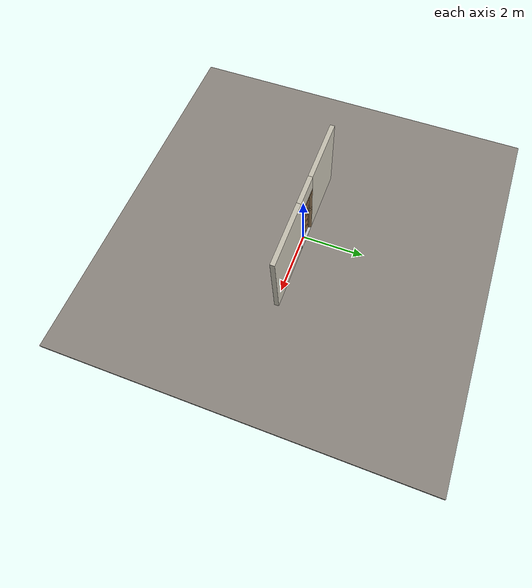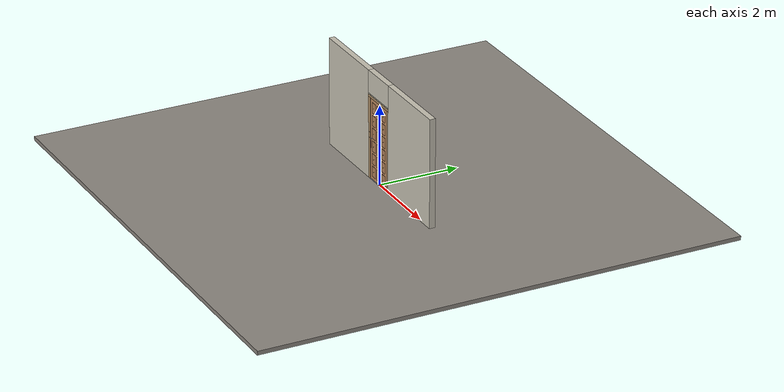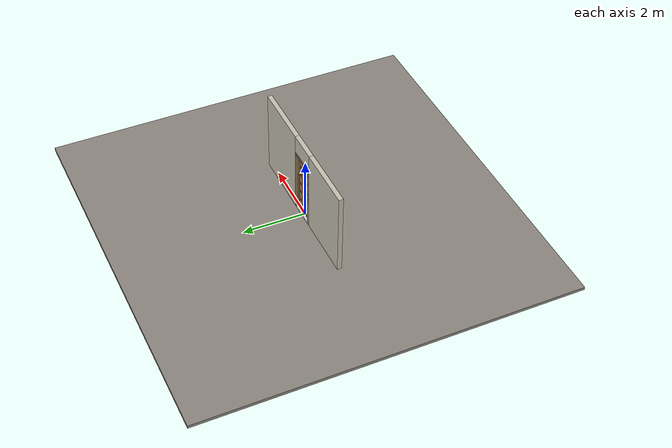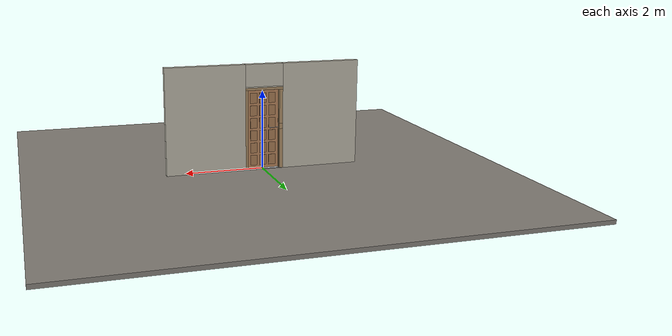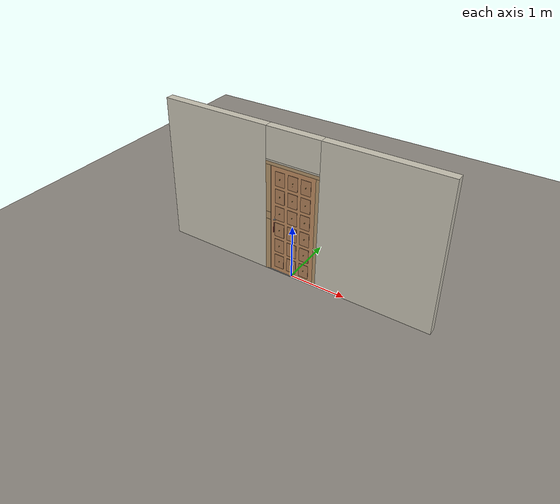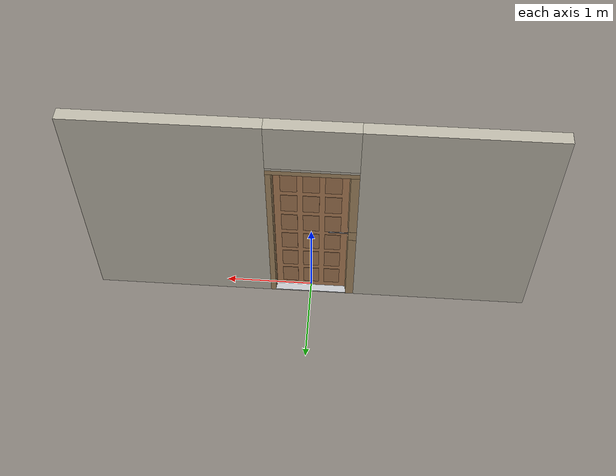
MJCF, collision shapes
<?xml version="1.0" ?>
<mujoco model="db0576_swing_single_full">
  <compiler angle="radian" meshdir="../../hardware" texturedir="../../textures" autolimits="true" inertiafromgeom="false"/>
  <option timestep="0.002" integrator="implicitfast" cone="elliptic" impratio="10" noslip_iterations="3">
    <flag multiccd="enable"/>
  </option>
  <size memory="16M"/>
  <default>
    <geom condim="4" solref="0.005 1" solimp="0.95 0.99 0.001"/>
    <joint solreflimit="0.005 1" solimplimit="0.95 0.99 0.001"/>
    <tendon solreflimit="0.005 1"/>
    <equality solref="0.002 1"/>
  </default>
  <visual>
    <headlight ambient="0.4 0.4 0.4" diffuse="0.7 0.7 0.7" specular="0.2 0.2 0.2"/>
    <quality shadowsize="4096"/>
    <map znear="0.01" zfar="60"/>
  </visual>
  <asset>
    <mesh name="hinge_7a316c6d01" file="hinge_7a316c6d01.obj"/>
    <mesh name="hinge_jamb_575a241b6b" file="hinge_jamb_575a241b6b.obj"/>
    <mesh name="thumb_latch_0073ea78ed" file="thumb_latch_0073ea78ed.obj"/>
    <mesh name="wreath_86a3f1bf8b" file="wreath_86a3f1bf8b.obj"/>
    <material name="mat_floor" rgba="0.55 0.53 0.5 1" specular="0.2" shininess="0.15" reflectance="0"/>
    <material name="mat_wall" rgba="0.78 0.76 0.7 1" specular="0.2" shininess="0.1" reflectance="0"/>
    <material name="mat_leaf" rgba="0.75 0.55 0.38 1" specular="0.2" shininess="0.45" reflectance="0"/>
    <material name="mat_leaf_panel" rgba="0.69 0.506 0.35 1" specular="0.2" shininess="0.45" reflectance="0"/>
    <material name="mat_button" rgba="0.7 0.6 0.3 1" specular="0.8" shininess="0.7" reflectance="0.4"/>
    <material name="mat_hinge" rgba="0.65 0.66 0.68 1" specular="0.74" shininess="0.5" reflectance="0.36"/>
    <material name="mat_op_wrought_iron" rgba="0.08 0.08 0.09 1" specular="0.56" shininess="0.25" reflectance="0.24"/>
    <material name="mat_frame" rgba="0.7 0.58 0.42 1" specular="0.2" shininess="0.5" reflectance="0"/>
    <material name="mat_threshold" rgba="0.8 0.81 0.83 1" specular="0.8" shininess="0.6" reflectance="0.4"/>
    <material name="mat_wreath" rgba="0.12 0.3 0.12 1" specular="0.2" shininess="0.05" reflectance="0"/>
    <material name="mat_wreath_hook" rgba="0.85 0.66 0.3 1" specular="0.8" shininess="0.75" reflectance="0.4"/>
    <texture name="skybox" type="skybox" builtin="gradient" rgb1="0.6 0.7 0.85" rgb2="0.9 0.92 0.95" width="256" height="256"/>
  </asset>
  <worldbody>
    <light name="sun" pos="1.5 -2.5 4" dir="-0.3 0.5 -0.8" directional="true" diffuse="0.8 0.8 0.8" specular="0.3 0.3 0.3" castshadow="true"/>
    <light name="fill" pos="-1.5 2.5 3" dir="0.3 -0.5 -0.7" directional="true" diffuse="0.35 0.35 0.4" castshadow="false"/>
    <camera name="robot_view" pos="0 -2.501687 1.734312" xyaxes="1 0 0 0 0.26963 0.962964" fovy="52"/>
    <camera name="far_view" pos="0 2.582688 1.734312" xyaxes="-1 0 0 0 -0.26963 0.962964" fovy="52"/>
    <camera name="iso" pos="-1.932062 -2.094937 2.141063" xyaxes="0.741536 -0.670913 0 0.242917 0.268487 0.932151" fovy="46"/>
    <camera name="detail_handle" pos="-0.1455 -0.86 1.195" xyaxes="0.97561 0.219512 0 -0.070934 0.315262 0.94635" fovy="38"/>
    <geom name="floor" type="box" size="6 6 0.05" pos="0 0 -0.05" material="mat_floor" group="0" contype="1" conaffinity="1" friction="0.8 0.005 0.0001" density="2400"/>
    <geom name="wall_left" type="box" size="0.99975 0.0725 1.35" pos="-1.50025 0.0405 1.35" material="mat_wall" group="0" contype="1" conaffinity="1" friction="0.6 0.005 0.0001" density="800"/>
    <geom name="wall_right" type="box" size="1.01475 0.0725 1.35" pos="1.48525 0.0405 1.35" material="mat_wall" group="0" contype="1" conaffinity="1" friction="0.6 0.005 0.0001" density="800"/>
    <geom name="wall_header" type="box" size="0.4855 0.0725 0.2825" pos="-0.015 0.0405 2.4175" material="mat_wall" group="0" contype="1" conaffinity="1" friction="0.6 0.005 0.0001" density="800"/>
    <geom name="hinge_0_jamb" type="mesh" mesh="hinge_jamb_575a241b6b" pos="0.4075 -0.032 0.267" quat="0 0 1 0" material="mat_hinge" group="1" contype="0" conaffinity="0" density="7850"/>
    <geom name="hinge_1_jamb" type="mesh" mesh="hinge_jamb_575a241b6b" pos="0.4075 -0.032 1.029" quat="0 0 1 0" material="mat_hinge" group="1" contype="0" conaffinity="0" density="7850"/>
    <geom name="hinge_2_jamb" type="mesh" mesh="hinge_jamb_575a241b6b" pos="0.4075 -0.032 1.861" quat="0 0 1 0" material="mat_hinge" group="1" contype="0" conaffinity="0" density="7850"/>
    <geom name="leaf_latch_bar_keeper_b" type="box" size="0.015 0.0025 0.0005" pos="-0.41 0.037 1.0275" quat="0.5 0.5 0.5 0.5" material="mat_op_wrought_iron" group="1" contype="0" conaffinity="0" density="7800"/>
    <geom name="leaf_latch_bar_keeper_l" type="box" size="0.0025 0.07 0.0005" pos="-0.41 0.0245 1.1" quat="0.5 0.5 0.5 0.5" material="mat_op_wrought_iron" group="1" contype="0" conaffinity="0" density="7800"/>
    <geom name="leaf_latch_bar_keeper_t" type="box" size="0.015 0.0025 0.0005" pos="-0.41 0.037 1.1725" quat="0.5 0.5 0.5 0.5" material="mat_op_wrought_iron" group="1" contype="0" conaffinity="0" density="7800"/>
    <geom name="leaf_latch_bar_keeper_r" type="box" size="0.0025 0.07 0.0005" pos="-0.41 0.0495 1.1" quat="0.5 0.5 0.5 0.5" material="mat_op_wrought_iron" group="1" contype="0" conaffinity="0" density="7800"/>
    <geom name="jamb_hinge" type="box" size="0.03 0.0725 1.0225" pos="0.4405 0.0405 1.0225" material="mat_frame" group="0" contype="1" conaffinity="1" friction="0.6 0.005 0.0001" density="750"/>
    <geom name="strike_1100_wall_n" type="box" size="0.045 0.033 0.07" pos="-0.4555 0.08 1.1" material="mat_frame" group="0" contype="1" conaffinity="1" friction="0.6 0.005 0.0001" density="750"/>
    <geom name="strike_1100_wall_p" type="box" size="0.045 0.0295 0.07" pos="-0.4555 -0.0025 1.1" material="mat_frame" group="0" contype="1" conaffinity="1" friction="0.6 0.005 0.0001" density="750"/>
    <geom name="strike_1100_back" type="box" size="0.035 0.01 0.07" pos="-0.4655 0.037 1.1" material="mat_frame" group="0" contype="1" conaffinity="1" friction="0.6 0.005 0.0001" density="750"/>
    <geom name="jamb_strike_0" type="box" size="0.045 0.0725 0.515" pos="-0.4555 0.0405 0.515" material="mat_frame" group="0" contype="1" conaffinity="1" friction="0.6 0.005 0.0001" density="750"/>
    <geom name="jamb_strike_1" type="box" size="0.045 0.0725 0.4375" pos="-0.4555 0.0405 1.6075" material="mat_frame" group="0" contype="1" conaffinity="1" friction="0.6 0.005 0.0001" density="750"/>
    <geom name="jamb_head" type="box" size="0.4855 0.0725 0.03" pos="-0.015 0.0405 2.075" material="mat_frame" group="0" contype="1" conaffinity="1" friction="0.6 0.005 0.0001" density="750"/>
    <geom name="head_stud" type="box" size="0.4855 0.0725 0.015" pos="-0.015 0.0405 2.12" material="mat_wall" group="0" contype="1" conaffinity="1" friction="0.6 0.005 0.0001" density="500"/>
    <geom name="stop_hinge" type="box" size="0.0055 0.016 1.0225" pos="0.405 0.0415 1.0225" material="mat_frame" group="0" contype="1" conaffinity="1" friction="0.6 0.005 0.0001" density="750"/>
    <geom name="stop_strike" type="box" size="0.0055 0.016 0.509" pos="-0.405 0.0415 0.509" material="mat_frame" group="0" contype="1" conaffinity="1" friction="0.6 0.005 0.0001" density="750"/>
    <geom name="stop_strike_1" type="box" size="0.0055 0.016 0.4315" pos="-0.405 0.0415 1.6135" material="mat_frame" group="0" contype="1" conaffinity="1" friction="0.6 0.005 0.0001" density="750"/>
    <geom name="stop_head" type="box" size="0.4105 0.016 0.0055" pos="0 0.0415 2.0395" material="mat_frame" group="0" contype="1" conaffinity="1" friction="0.6 0.005 0.0001" density="750"/>
    <geom name="threshold" type="box" size="0.4705 0.0725 0.0065" pos="0 0.0405 0.0065" material="mat_threshold" group="0" contype="1" conaffinity="1" friction="0.5 0.005 0.0001" density="2700"/>
    <site name="approach_point" pos="0 -1.5 0" quat="1 0 0 0" size="0.05" rgba="0.2 0.9 0.2 0.5" group="4"/>
    <site name="goal_point" pos="0 1.5 0" quat="1 0 0 0" size="0.05" rgba="0.2 0.9 0.2 0.5" group="4"/>
    <site name="door_plane_center" pos="0 0 1.0225" quat="1 0 0 0" size="0.02" rgba="0.2 0.9 0.2 0.5" group="4"/>
    <body name="leaf" pos="0.4105 0 0">
      <inertial pos="-0.411305 -0.003827 1.045875" mass="43.665256" quat="0.502387 -0.49899 -0.499153 -0.499462" diaginertia="2.452382847 14.665099615 17.079654737"/>
      <joint name="leaf_hinge" type="hinge" axis="0 0 1" pos="-0.003 -0.032 0" limited="true" range="0 2.443461" damping="0.210326" frictionloss="3.794658" armature="0.02"/>
      <geom name="leaf_slab" type="box" size="0.4065 0.025 1.012" pos="-0.4095 0 1.029" material="mat_leaf" group="0" contype="1" conaffinity="1" friction="0.35 0.005 0.0001" density="1"/>
      <geom name="leaf_panel_0_n" type="box" size="0.088833 0.003 0.130333" pos="-0.171833 -0.028 0.227333" material="mat_leaf_panel" group="1" contype="0" conaffinity="0" density="1"/>
      <geom name="leaf_panel_0_p" type="box" size="0.088833 0.003 0.130333" pos="-0.171833 0.028 0.227333" material="mat_leaf_panel" group="1" contype="0" conaffinity="0" density="1"/>
      <geom name="leaf_panel_1_n" type="box" size="0.088833 0.003 0.130333" pos="-0.4095 -0.028 0.227333" material="mat_leaf_panel" group="1" contype="0" conaffinity="0" density="1"/>
      <geom name="leaf_panel_1_p" type="box" size="0.088833 0.003 0.130333" pos="-0.4095 0.028 0.227333" material="mat_leaf_panel" group="1" contype="0" conaffinity="0" density="1"/>
      <geom name="leaf_panel_2_n" type="box" size="0.088833 0.003 0.130333" pos="-0.647167 -0.028 0.227333" material="mat_leaf_panel" group="1" contype="0" conaffinity="0" density="1"/>
      <geom name="leaf_panel_2_p" type="box" size="0.088833 0.003 0.130333" pos="-0.647167 0.028 0.227333" material="mat_leaf_panel" group="1" contype="0" conaffinity="0" density="1"/>
      <geom name="leaf_panel_3_n" type="box" size="0.088833 0.003 0.130333" pos="-0.171833 -0.028 0.548" material="mat_leaf_panel" group="1" contype="0" conaffinity="0" density="1"/>
      <geom name="leaf_panel_3_p" type="box" size="0.088833 0.003 0.130333" pos="-0.171833 0.028 0.548" material="mat_leaf_panel" group="1" contype="0" conaffinity="0" density="1"/>
      <geom name="leaf_panel_4_n" type="box" size="0.088833 0.003 0.130333" pos="-0.4095 -0.028 0.548" material="mat_leaf_panel" group="1" contype="0" conaffinity="0" density="1"/>
      <geom name="leaf_panel_4_p" type="box" size="0.088833 0.003 0.130333" pos="-0.4095 0.028 0.548" material="mat_leaf_panel" group="1" contype="0" conaffinity="0" density="1"/>
      <geom name="leaf_panel_5_n" type="box" size="0.088833 0.003 0.130333" pos="-0.647167 -0.028 0.548" material="mat_leaf_panel" group="1" contype="0" conaffinity="0" density="1"/>
      <geom name="leaf_panel_5_p" type="box" size="0.088833 0.003 0.130333" pos="-0.647167 0.028 0.548" material="mat_leaf_panel" group="1" contype="0" conaffinity="0" density="1"/>
      <geom name="leaf_panel_6_n" type="box" size="0.088833 0.003 0.130333" pos="-0.171833 -0.028 0.868667" material="mat_leaf_panel" group="1" contype="0" conaffinity="0" density="1"/>
      <geom name="leaf_panel_6_p" type="box" size="0.088833 0.003 0.130333" pos="-0.171833 0.028 0.868667" material="mat_leaf_panel" group="1" contype="0" conaffinity="0" density="1"/>
      <geom name="leaf_panel_7_n" type="box" size="0.088833 0.003 0.130333" pos="-0.4095 -0.028 0.868667" material="mat_leaf_panel" group="1" contype="0" conaffinity="0" density="1"/>
      <geom name="leaf_panel_7_p" type="box" size="0.088833 0.003 0.130333" pos="-0.4095 0.028 0.868667" material="mat_leaf_panel" group="1" contype="0" conaffinity="0" density="1"/>
      <geom name="leaf_panel_8_n" type="box" size="0.088833 0.003 0.130333" pos="-0.647167 -0.028 0.868667" material="mat_leaf_panel" group="1" contype="0" conaffinity="0" density="1"/>
      <geom name="leaf_panel_8_p" type="box" size="0.088833 0.003 0.130333" pos="-0.647167 0.028 0.868667" material="mat_leaf_panel" group="1" contype="0" conaffinity="0" density="1"/>
      <geom name="leaf_panel_9_n" type="box" size="0.088833 0.003 0.130333" pos="-0.171833 -0.028 1.189333" material="mat_leaf_panel" group="1" contype="0" conaffinity="0" density="1"/>
      <geom name="leaf_panel_9_p" type="box" size="0.088833 0.003 0.130333" pos="-0.171833 0.028 1.189333" material="mat_leaf_panel" group="1" contype="0" conaffinity="0" density="1"/>
      <geom name="leaf_panel_10_n" type="box" size="0.088833 0.003 0.130333" pos="-0.4095 -0.028 1.189333" material="mat_leaf_panel" group="1" contype="0" conaffinity="0" density="1"/>
      <geom name="leaf_panel_10_p" type="box" size="0.088833 0.003 0.130333" pos="-0.4095 0.028 1.189333" material="mat_leaf_panel" group="1" contype="0" conaffinity="0" density="1"/>
      <geom name="leaf_panel_11_n" type="box" size="0.088833 0.003 0.130333" pos="-0.647167 -0.028 1.189333" material="mat_leaf_panel" group="1" contype="0" conaffinity="0" density="1"/>
      <geom name="leaf_panel_11_p" type="box" size="0.088833 0.003 0.130333" pos="-0.647167 0.028 1.189333" material="mat_leaf_panel" group="1" contype="0" conaffinity="0" density="1"/>
      <geom name="leaf_panel_12_n" type="box" size="0.088833 0.003 0.130333" pos="-0.171833 -0.028 1.51" material="mat_leaf_panel" group="1" contype="0" conaffinity="0" density="1"/>
      <geom name="leaf_panel_12_p" type="box" size="0.088833 0.003 0.130333" pos="-0.171833 0.028 1.51" material="mat_leaf_panel" group="1" contype="0" conaffinity="0" density="1"/>
      <geom name="leaf_panel_13_n" type="box" size="0.088833 0.003 0.130333" pos="-0.4095 -0.028 1.51" material="mat_leaf_panel" group="1" contype="0" conaffinity="0" density="1"/>
      <geom name="leaf_panel_13_p" type="box" size="0.088833 0.003 0.130333" pos="-0.4095 0.028 1.51" material="mat_leaf_panel" group="1" contype="0" conaffinity="0" density="1"/>
      <geom name="leaf_panel_14_n" type="box" size="0.088833 0.003 0.130333" pos="-0.647167 -0.028 1.51" material="mat_leaf_panel" group="1" contype="0" conaffinity="0" density="1"/>
      <geom name="leaf_panel_14_p" type="box" size="0.088833 0.003 0.130333" pos="-0.647167 0.028 1.51" material="mat_leaf_panel" group="1" contype="0" conaffinity="0" density="1"/>
      <geom name="leaf_panel_15_n" type="box" size="0.088833 0.003 0.130333" pos="-0.171833 -0.028 1.830667" material="mat_leaf_panel" group="1" contype="0" conaffinity="0" density="1"/>
      <geom name="leaf_panel_15_p" type="box" size="0.088833 0.003 0.130333" pos="-0.171833 0.028 1.830667" material="mat_leaf_panel" group="1" contype="0" conaffinity="0" density="1"/>
      <geom name="leaf_panel_16_n" type="box" size="0.088833 0.003 0.130333" pos="-0.4095 -0.028 1.830667" material="mat_leaf_panel" group="1" contype="0" conaffinity="0" density="1"/>
      <geom name="leaf_panel_16_p" type="box" size="0.088833 0.003 0.130333" pos="-0.4095 0.028 1.830667" material="mat_leaf_panel" group="1" contype="0" conaffinity="0" density="1"/>
      <geom name="leaf_panel_17_n" type="box" size="0.088833 0.003 0.130333" pos="-0.647167 -0.028 1.830667" material="mat_leaf_panel" group="1" contype="0" conaffinity="0" density="1"/>
      <geom name="leaf_panel_17_p" type="box" size="0.088833 0.003 0.130333" pos="-0.647167 0.028 1.830667" material="mat_leaf_panel" group="1" contype="0" conaffinity="0" density="1"/>
      <geom name="leaf_tuft_0" type="sphere" size="0.01" pos="-0.171833 -0.033 0.227333" material="mat_button" group="2" contype="0" conaffinity="0" density="7850"/>
      <geom name="leaf_tuft_1" type="sphere" size="0.01" pos="-0.4095 -0.033 0.227333" material="mat_button" group="2" contype="0" conaffinity="0" density="7850"/>
      <geom name="leaf_tuft_2" type="sphere" size="0.01" pos="-0.647167 -0.033 0.227333" material="mat_button" group="2" contype="0" conaffinity="0" density="7850"/>
      <geom name="leaf_tuft_3" type="sphere" size="0.01" pos="-0.171833 -0.033 0.548" material="mat_button" group="2" contype="0" conaffinity="0" density="7850"/>
      <geom name="leaf_tuft_4" type="sphere" size="0.01" pos="-0.4095 -0.033 0.548" material="mat_button" group="2" contype="0" conaffinity="0" density="7850"/>
      <geom name="leaf_tuft_5" type="sphere" size="0.01" pos="-0.647167 -0.033 0.548" material="mat_button" group="2" contype="0" conaffinity="0" density="7850"/>
      <geom name="leaf_tuft_6" type="sphere" size="0.01" pos="-0.171833 -0.033 0.868667" material="mat_button" group="2" contype="0" conaffinity="0" density="7850"/>
      <geom name="leaf_tuft_7" type="sphere" size="0.01" pos="-0.4095 -0.033 0.868667" material="mat_button" group="2" contype="0" conaffinity="0" density="7850"/>
      <geom name="leaf_tuft_8" type="sphere" size="0.01" pos="-0.647167 -0.033 0.868667" material="mat_button" group="2" contype="0" conaffinity="0" density="7850"/>
      <geom name="leaf_tuft_9" type="sphere" size="0.01" pos="-0.171833 -0.033 1.189333" material="mat_button" group="2" contype="0" conaffinity="0" density="7850"/>
      <geom name="leaf_tuft_10" type="sphere" size="0.01" pos="-0.4095 -0.033 1.189333" material="mat_button" group="2" contype="0" conaffinity="0" density="7850"/>
      <geom name="leaf_tuft_11" type="sphere" size="0.01" pos="-0.647167 -0.033 1.189333" material="mat_button" group="2" contype="0" conaffinity="0" density="7850"/>
      <geom name="leaf_tuft_12" type="sphere" size="0.01" pos="-0.171833 -0.033 1.51" material="mat_button" group="2" contype="0" conaffinity="0" density="7850"/>
      <geom name="leaf_tuft_13" type="sphere" size="0.01" pos="-0.4095 -0.033 1.51" material="mat_button" group="2" contype="0" conaffinity="0" density="7850"/>
      <geom name="leaf_tuft_14" type="sphere" size="0.01" pos="-0.647167 -0.033 1.51" material="mat_button" group="2" contype="0" conaffinity="0" density="7850"/>
      <geom name="leaf_tuft_15" type="sphere" size="0.01" pos="-0.171833 -0.033 1.830667" material="mat_button" group="2" contype="0" conaffinity="0" density="7850"/>
      <geom name="leaf_tuft_16" type="sphere" size="0.01" pos="-0.4095 -0.033 1.830667" material="mat_button" group="2" contype="0" conaffinity="0" density="7850"/>
      <geom name="leaf_tuft_17" type="sphere" size="0.01" pos="-0.647167 -0.033 1.830667" material="mat_button" group="2" contype="0" conaffinity="0" density="7850"/>
      <geom name="hinge_0" type="mesh" mesh="hinge_7a316c6d01" pos="-0.003 -0.032 0.267" quat="0 0 1 0" material="mat_hinge" group="1" contype="0" conaffinity="0" density="7850"/>
      <geom name="hinge_1" type="mesh" mesh="hinge_7a316c6d01" pos="-0.003 -0.032 1.029" quat="0 0 1 0" material="mat_hinge" group="1" contype="0" conaffinity="0" density="7850"/>
      <geom name="hinge_2" type="mesh" mesh="hinge_7a316c6d01" pos="-0.003 -0.032 1.861" quat="0 0 1 0" material="mat_hinge" group="1" contype="0" conaffinity="0" density="7850"/>
      <geom name="leaf_suffolk_grip" type="mesh" mesh="thumb_latch_0073ea78ed" pos="-0.736 -0.025 0.915" quat="0 0 -0.707107 0.707107" material="mat_op_wrought_iron" group="1" contype="0" conaffinity="0" density="7000"/>
      <geom name="leaf_suffolk_grip_col" type="capsule" size="0.008 0.09" pos="-0.736 -0.06 0.915" material="mat_op_wrought_iron" group="3" contype="1" conaffinity="1" rgba="0.8 0.3 0.3 0.25" friction="0.7 0.01 0.0001" density="7000"/>
      <geom name="leaf_latch_bar_pivot" type="box" size="0.018 0.002 0.018" pos="-0.616 0.027 1.055" material="mat_op_wrought_iron" group="1" contype="0" conaffinity="0" density="7000"/>
      <geom name="leaf_latch_bar_pin" type="cylinder" size="0.005 0.01" pos="-0.616 0.035 1.055" quat="0.707107 -0.707107 0 0" material="mat_op_wrought_iron" group="1" contype="0" conaffinity="0" density="7000"/>
      <geom name="wreath" type="mesh" mesh="wreath_86a3f1bf8b" pos="-0.4095 -0.025 1.59572" quat="0 0 -0.707107 0.707107" material="mat_wreath" group="2" contype="0" conaffinity="0" density="200"/>
      <geom name="wreath_hook" type="cylinder" size="0.004 0.008" pos="-0.4095 -0.032 1.78372" quat="0.707107 -0.707107 0 0" material="mat_wreath_hook" group="2" contype="0" conaffinity="0" density="8500"/>
      <site name="leaf_grip_n" pos="-0.736 -0.06 0.915" quat="1 0 0 0" size="0.012" rgba="0.2 0.9 0.2 0.5" group="4"/>
      <site name="leaf_edge_mid" pos="-0.816 0 1.012" quat="1 0 0 0" size="0.02" rgba="0.2 0.9 0.2 0.5" group="4"/>
      <body name="leaf_thumb" pos="-0.736 -0.025 1.06">
        <inertial pos="0 -0.00137 -0.006032" mass="0.131152" quat="0.700107 -0.09925 -0.09925 -0.700107" diaginertia="0.000010933 0.0000597 0.000061045"/>
        <joint name="leaf_thumb_hinge" type="hinge" axis="1 0 0" limited="true" range="0 0.3" damping="0.15542" frictionloss="0.032" stiffness="0.6" springref="-0.5" armature="0.01"/>
        <geom name="leaf_thumb_geom" type="box" size="0.015 0.014 0.003" pos="0 -0.02 0" material="mat_op_wrought_iron" group="0" contype="1" conaffinity="1" friction="0.6 0.005 0.0001" density="7000"/>
        <geom name="leaf_thumb_boss" type="box" size="0.012 0.008 0.013" pos="0 -0.004 -0.005" material="mat_op_wrought_iron" group="1" contype="0" conaffinity="0" density="7000"/>
        <geom name="leaf_thumb_lifter" type="box" size="0.004 0.029 0.004" pos="0 0.031 -0.017" material="mat_op_wrought_iron" group="1" contype="0" conaffinity="0" density="7000"/>
        <site name="leaf_thumb_push" pos="0 -0.024 0.005" quat="1 0 0 0" size="0.01" rgba="0.2 0.9 0.2 0.5" group="4"/>
      </body>
      <body name="leaf_latch_bar" pos="-0.616 0.037 1.055">
        <inertial pos="-0.106 0 0" mass="0.25" quat="0 0 -0.707107 0.707107" diaginertia="0.000004465 0.000904065 0.000904065"/>
        <joint name="leaf_latch_bar_hinge" type="hinge" axis="0 1 0" limited="true" range="0 0.6" damping="0.01" frictionloss="0.01" armature="0.005"/>
        <geom name="leaf_latch_bar_geom" type="capsule" size="0.006 0.1" pos="-0.106 0 0" quat="0.707107 0 -0.707107 0" material="mat_op_wrought_iron" group="0" contype="1" conaffinity="1" friction="0.6 0.005 0.0001" density="7850"/>
      </body>
    </body>
  </worldbody>
  <equality>
    <joint name="leaf_thumb_couple" joint1="leaf_latch_bar_hinge" joint2="leaf_thumb_hinge" polycoef="0 2 0 0 0" active="true"/>
  </equality>
  <sensor>
    <jointpos name="leaf_hinge_pos" joint="leaf_hinge"/>
    <jointvel name="leaf_hinge_vel" joint="leaf_hinge"/>
    <jointpos name="leaf_thumb_hinge_pos" joint="leaf_thumb_hinge"/>
    <jointvel name="leaf_thumb_hinge_vel" joint="leaf_thumb_hinge"/>
    <jointpos name="leaf_latch_bar_hinge_pos" joint="leaf_latch_bar_hinge"/>
    <jointvel name="leaf_latch_bar_hinge_vel" joint="leaf_latch_bar_hinge"/>
  </sensor>
</mujoco>
